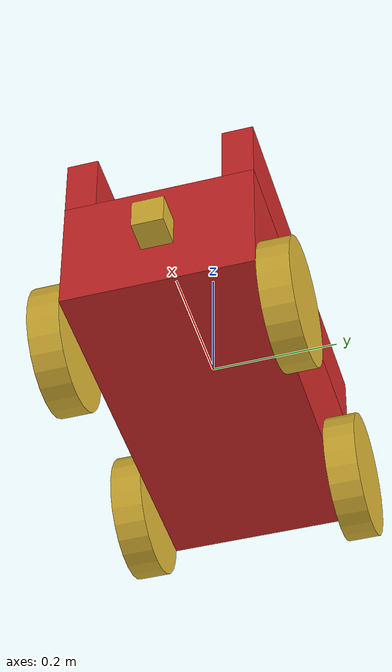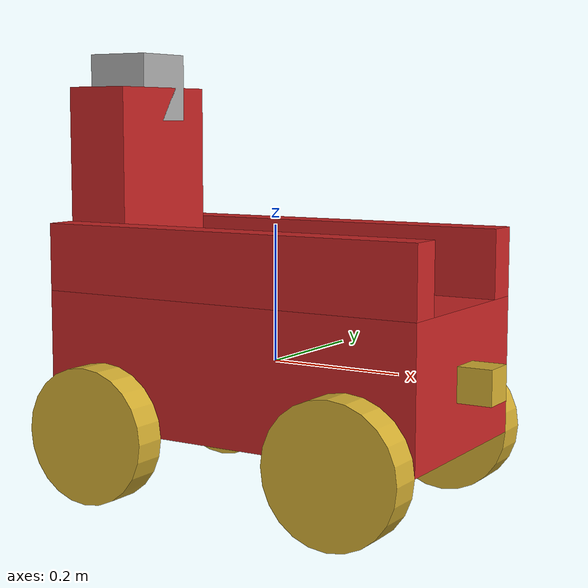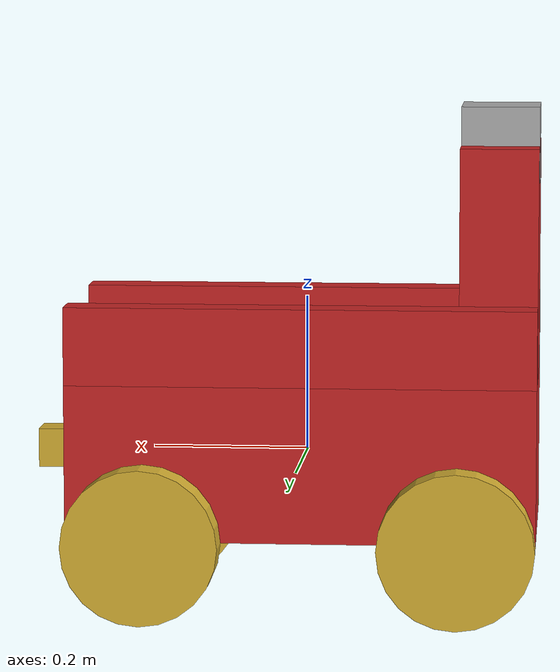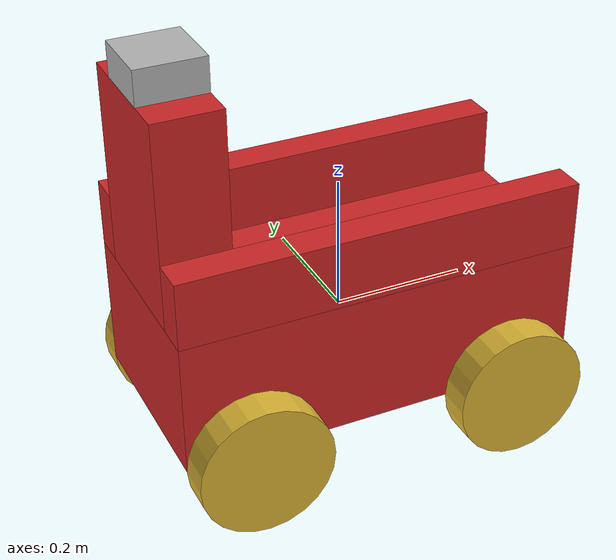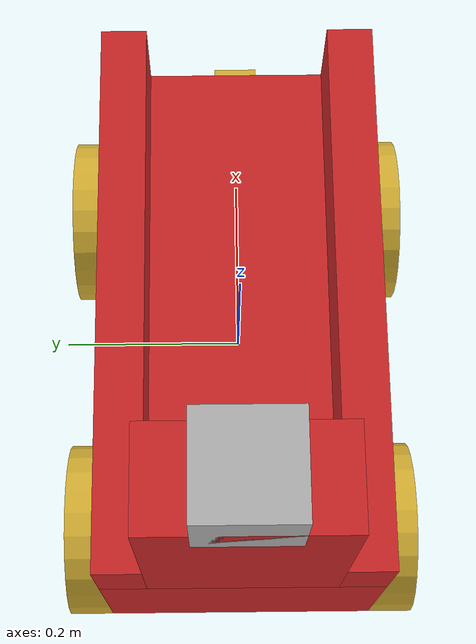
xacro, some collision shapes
<?xml version="1.0"?>

<robot name="my_robot" xmlns:xacro="http://www.ros.org/wiki/xacro">
	<!-- chassis and wheel measurements -->
	<xacro:property name="bed_length" value="0.6" />
	<xacro:property name="bed_width" value="0.3" />
	<xacro:property name="bed_height" value="0.2" />
	<xacro:property name="arm_length" value="${bed_length}" />
	<xacro:property name="arm_width" value="0.05" />
	<xacro:property name="arm_height" value="0.1" />
	<xacro:property name="backrest_length" value="0.1" />
	<xacro:property name="backrest_width" value="${bed_width - 2*arm_width}" />
	<xacro:property name="backrest_height" value="0.3" />
	<xacro:property name="wheel_radius" value="0.1" />
	<xacro:property name="wheel_width" value="0.05" />

	<!-- chassis and wheel positions -->
	<xacro:property name="arm_origin_x" value="0" />
	<xacro:property name="arm_origin_y" value="${(bed_width - arm_width)/2}" />
	<xacro:property name="arm_origin_z" value="${(bed_height + arm_height)/2}" />
	<xacro:property name="backrest_origin_x" value="${-(bed_length - backrest_length)/2}" />
	<xacro:property name="backrest_origin_y" value="0" />
	<xacro:property name="backrest_origin_z" value="${(bed_height + backrest_height)/2}" />
	<xacro:property name="front_wheel_hinge_x" value="${bed_length/2 - wheel_radius}" />
	<xacro:property name="rear_wheel_hinge_x" value="${-front_wheel_hinge_x}" />
	<xacro:property name="left_wheel_hinge_y" value="${(bed_width + wheel_width)/2}" />
	<xacro:property name="right_wheel_hinge_y" value="${-left_wheel_hinge_y}" />
	<xacro:property name="wheel_joint_z" value="${-bed_height / 2}" />

	<!-- sensor measurements -->
	<xacro:property name="camera_length" value="0.05" />
	<xacro:property name="camera_width" value="0.05" />
	<xacro:property name="camera_height" value="0.05" />
	<xacro:property name="hokuyo_length" value="0.1" />
	<xacro:property name="hokuyo_width" value="0.1" />
	<xacro:property name="hokuyo_height" value="0.1" />

	<!-- sensor positions -->
	<xacro:property name="camera_joint_origin_x" value="${(bed_length + camera_length)/2}" />
	<xacro:property name="camera_joint_origin_y" value="0" />
	<xacro:property name="camera_joint_origin_z" value="0" />
	<xacro:property name="hokuyo_joint_origin_x" value="${-(bed_length - hokuyo_length)/2}" />
	<xacro:property name="hokuyo_joint_origin_y" value="0" />
	<xacro:property name="hokuyo_joint_origin_z" value="${bed_height/2 + backrest_height}" />

	<!-- chassis and wheels geometry and joints-->

	<link name="robot_footprint"></link>

	<joint name="robot_footprint_joint" type="fixed">
		<origin xyz="0 0 0" rpy="0 0 0" />
		<parent link="robot_footprint" />
		<child link="chassis" />
	</joint>

	<link name="chassis">
		<pose>0 0 ${wheel_radius} 0 0 0</pose>

		<inertial>
			<mass value="15.0" />
			<origin xyz="0 0 0" rpy="0 0 0" />
			<inertia
				ixx="0.1" ixy="0" ixz="0"
				iyy="0.1" iyz="0"
				izz="0.1"
			/>
		</inertial>

		<!-- For some reason, Gazebo can only add color to a link if its name matches
			   the name of its visual tag. So alas, all of these pieces have the name attribute "chassis" -->

		<!-- Throne seat -->

		<collision name="chassis">
			<origin xyz="0 0 0" rpy="0 0 0" />
			<geometry>
				<box size="${bed_length} ${bed_width} ${bed_height}" />
			</geometry>
		</collision>

		<visual name="chassis">
			<origin xyz="0 0 0" rpy="0 0 0" />
			<geometry>
				<box size="${bed_length} ${bed_width} ${bed_height}" />
			</geometry>
		</visual>

		<!-- Right armrest -->

		<collision name="chassis">
			<origin xyz="${arm_origin_x} ${-arm_origin_y} ${arm_origin_z}" rpy="0 0 0" />
			<geometry>
				<box size="${arm_length} ${arm_width} ${arm_height}" />
			</geometry>
		</collision>

		<visual name="chassis">
			<origin xyz="${arm_origin_x} ${-arm_origin_y} ${arm_origin_z}" rpy="0 0 0" />
			<geometry>
				<box size="${arm_length} ${arm_width} ${arm_height}" />
			</geometry>
		</visual>

		<!-- Left armrest -->

		<collision name="chassis">
			<origin xyz="${arm_origin_x} ${arm_origin_y} ${arm_origin_z}" rpy="0 0 0" />
			<geometry>
				<box size="${arm_length} ${arm_width} ${arm_height}" />
			</geometry>
		</collision>

		<visual name="chassis">
			<origin xyz="${arm_origin_x} ${arm_origin_y} ${arm_origin_z}" rpy="0 0 0" />
			<geometry>
				<box size="${arm_length} ${arm_width} ${arm_height}" />
			</geometry>
		</visual>

		<!-- Backrest -->

		<collision name="chassis">
			<origin xyz="${backrest_origin_x} ${backrest_origin_y} ${backrest_origin_z}" rpy="0 0 0" />
			<geometry>
				<box size="${backrest_length} ${backrest_width} ${backrest_height}" />
			</geometry>
		</collision>

		<visual name="chassis">
			<origin xyz="${backrest_origin_x} ${backrest_origin_y} ${backrest_origin_z}" rpy="0 0 0" />
			<geometry>
				<box size="${backrest_length} ${backrest_width} ${backrest_height}" />
			</geometry>
		</visual>
	</link>

	<link name="front_left_wheel">
		<inertial>
			<mass value="5" />
			<origin xyz="0 0 0" rpy="0 ${pi/2} ${pi/2}" />
			<inertia
				ixx="0.1" ixy="0" ixz="0"
				iyy="0.1" iyz="0"
				izz="0.1"
			/>
		</inertial>

		<collision name="front_left_wheel">
			<origin xyz="0 0 0" rpy="0 ${pi/2} ${pi/2}" />
			<geometry>
				<cylinder radius="${wheel_radius}" length="${wheel_width}" />
			</geometry>
		</collision>

		<visual name="front_left_wheel">
			<origin xyz="0 0 0" rpy="0 ${pi/2} ${pi/2}" />
			<geometry>
				<cylinder radius="${wheel_radius}" length="${wheel_width}" />
			</geometry>
		</visual>
	</link>

	<link name="rear_left_wheel">
		<inertial>
			<mass value="5" />
			<origin xyz="0 0 0" rpy="0 ${pi/2} ${pi/2}" />
			<inertia
				ixx="0.1" ixy="0" ixz="0"
				iyy="0.1" iyz="0"
				izz="0.1"
			/>
		</inertial>

		<collision name="rear_left_wheel">
			<origin xyz="0 0 0" rpy="0 ${pi/2} ${pi/2}" />
			<geometry>
				<cylinder radius="${wheel_radius}" length="${wheel_width}" />
			</geometry>
		</collision>

		<visual name="rear_left_wheel">
			<origin xyz="0 0 0" rpy="0 ${pi/2} ${pi/2}" />
			<geometry>
				<cylinder radius="${wheel_radius}" length="${wheel_width}" />
			</geometry>
		</visual>
	</link>

	<link name="front_right_wheel">
		<inertial>
			<mass value="5" />
			<origin xyz="0 0 0" rpy="0 ${pi/2} ${pi/2}" />
			<inertia
				ixx="0.1" ixy="0" ixz="0"
				iyy="0.1" iyz="0"
				izz="0.1"
			/>
		</inertial>

		<collision name="front_right_wheel">
			<origin xyz="0 0 0" rpy="0 ${pi/2} ${pi/2}" />
			<geometry>
				<cylinder radius="${wheel_radius}" length="${wheel_width}" />
			</geometry>
		</collision>

		<visual name="front_right_wheel">
			<origin xyz="0 0 0" rpy="0 ${pi/2} ${pi/2}" />
			<geometry>
				<cylinder radius="${wheel_radius}" length="${wheel_width}" />
			</geometry>
		</visual>
	</link>

	<link name="rear_right_wheel">
		<inertial>
			<mass value="5" />
			<origin xyz="0 0 0" rpy="0 ${pi/2} ${pi/2}" />
			<inertia
				ixx="0.1" ixy="0" ixz="0"
				iyy="0.1" iyz="0"
				izz="0.1"
			/>
		</inertial>

		<collision name="rear_right_wheel">
			<origin xyz="0 0 0" rpy="0 ${pi/2} ${pi/2}" />
			<geometry>
				<cylinder radius="${wheel_radius}" length="${wheel_width}" />
			</geometry>
		</collision>

		<visual name="rear_right_wheel">
			<origin xyz="0 0 0" rpy="0 ${pi/2} ${pi/2}" />
			<geometry>
				<cylinder radius="${wheel_radius}" length="${wheel_width}" />
			</geometry>
		</visual>
	</link>

	<joint name="front_left_wheel_hinge" type="continuous">
		<origin xyz="${front_wheel_hinge_x} ${left_wheel_hinge_y} ${wheel_joint_z}" rpy="0 0 0" />
		<child link="front_left_wheel" />
		<parent link="chassis" />
		<axis xyz="0 1 0" rpy="0 0 0" />
		<limit effort="10000" velocity="1000" />
		<dynamics damping="1.0" friction="1.0" />
	</joint>

	<joint name="rear_left_wheel_hinge" type="continuous">
		<origin xyz="${rear_wheel_hinge_x} ${left_wheel_hinge_y} ${wheel_joint_z}" rpy="0 0 0" />
		<child link="rear_left_wheel" />
		<parent link="chassis" />
		<axis xyz="0 1 0" rpy="0 0 0" />
		<limit effort="10000" velocity="1000" />
		<dynamics damping="1.0" friction="1.0" />
	</joint>

	<joint name="front_right_wheel_hinge" type="continuous">
		<origin xyz="${front_wheel_hinge_x} ${right_wheel_hinge_y} ${wheel_joint_z}" rpy="0 0 0" />
		<child link="front_right_wheel" />
		<parent link="chassis" />
		<axis xyz="0 1 0" rpy="0 0 0" />
		<limit effort="10000" velocity="1000" />
		<dynamics damping="1.0" friction="1.0" />
	</joint>

	<joint name="rear_right_wheel_hinge" type="continuous">
		<origin xyz="${rear_wheel_hinge_x} ${right_wheel_hinge_y} ${wheel_joint_z}" rpy="0 0 0" />
		<child link="rear_right_wheel" />
		<parent link="chassis" />
		<axis xyz="0 1 0" rpy="0 0 0" />
		<limit effort="10000" velocity="1000" />
		<dynamics damping="1.0" friction="1.0" />
	</joint>

	<!-- sensors geometry and joints-->

	<link name="camera">
		<inertial>
			<mass value="0.1" />
			<origin xyz="0 0 0" rpy="0 0 0" />
			<box_inertia m="0.1" x="${camera_length}" y="${camera_width}" z="${camera_height}" />
			<inertia
				ixx="1e-6" ixy="0" ixz="0"
				iyy="1e-6" iyz="0"
				izz="1e-6"
			/>
		</inertial>

		<collision name="camera">
			<origin xyz="0 0 0" rpy="0 0 0" />
			<geometry>
				<box size="${camera_length} ${camera_width} ${camera_height}" />
			</geometry>
		</collision>

		<visual name="camera">
			<origin xyz="0 0 0" rpy="0 0 0" />
			<geometry>
				<box size="${camera_length} ${camera_width} ${camera_height}" />
			</geometry>
		</visual>
	</link>

	<joint name="camera_joint" type="fixed">
		<origin xyz="${camera_joint_origin_x} ${camera_joint_origin_y} ${camera_joint_origin_z}" rpy="0 0 0" />
		<child link="camera" />
		<parent link="chassis" />
		<axis xyz="0 1 0" rpy="0 0 0" />
	</joint>

	<link name="hokuyo">
		<inertial>
			<mass value="1e-5" />
			<origin xyz="0 0 0" rpy="0 0 0" />
			<inertia
				ixx="1e-6" ixy="0" ixz="0"
				iyy="1e-6" iyz="0"
				izz="1e-6"
			/>
		</inertial>

		<collision name="hokuyo">
			<origin xyz="0 0 0" rpy="0 0 0" />
			<geometry>
				<box size="${hokuyo_length} ${hokuyo_width} ${hokuyo_height}" />
			</geometry>
		</collision>

		<visual name="hokuyo">
			<origin xyz="0 0 0" rpy="0 0 0" />
			<geometry>
				<mesh filename="package://my_robot/meshes/hokuyo.dae" />
			</geometry>
		</visual>
	</link>

	<joint name="hokuyo_joint" type="fixed">
		<origin xyz="${hokuyo_joint_origin_x} ${hokuyo_joint_origin_y} ${hokuyo_joint_origin_z}" rpy="0 0 0" />
		<child link="hokuyo" />
		<parent link="chassis" />
		<axis xyz="0 1 0" rpy="0 0 0" />
	</joint>

	<!-- Gazebo plugins and settings -->
	<xacro:include filename="$(find my_robot)/urdf/my_robot.gazebo" />
</robot>
